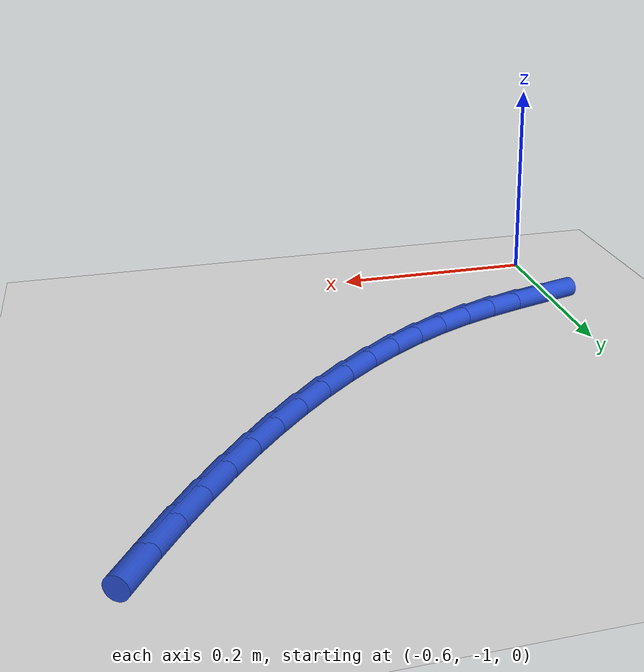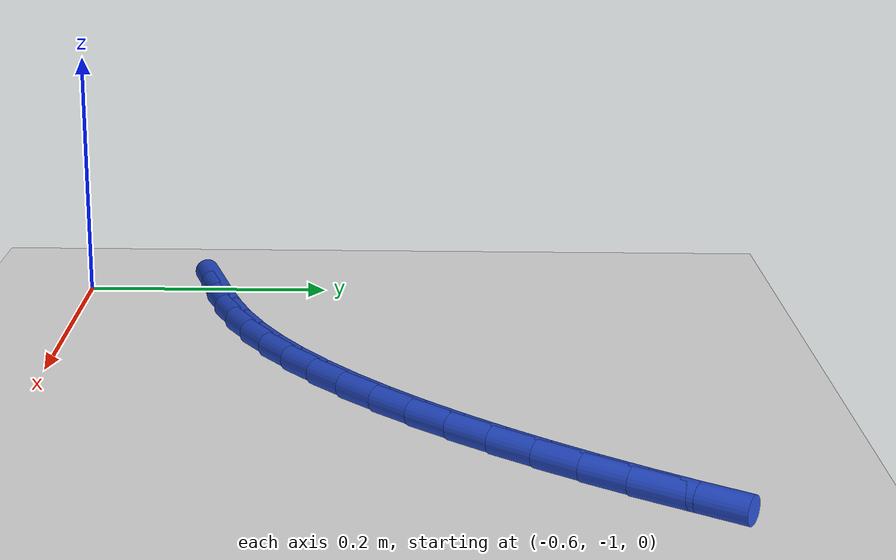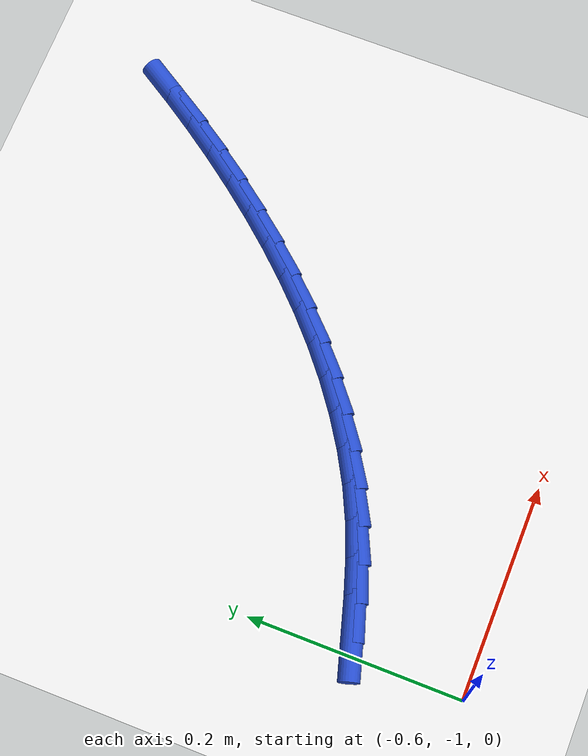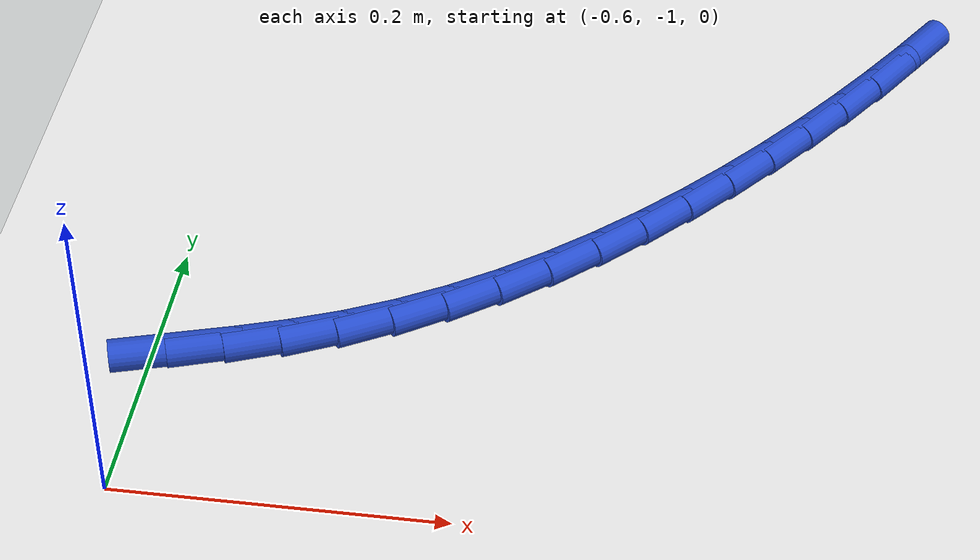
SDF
<sdf version="1.6">
 <world name="default">
  <model name="ground_plane">
   <static>1</static>
   <link name="link">
    <collision name="collision">
     <geometry><plane><normal>0 0 1</normal><size>100 100</size></plane></geometry>
     <surface><friction><ode><mu>100</mu><mu2>50</mu2></ode></friction></surface>
    </collision>
    <visual name="visual">
     <cast_shadows>0</cast_shadows>
     <geometry><plane><normal>0 0 1</normal><size>100 100</size></plane></geometry>
     <material>
      <script><uri>file://media/materials/scripts/gazebo.material</uri><name>Gazebo/WhiteGlow</name></script>
     </material>
    </visual>
   </link>
  </model>
  <model name="line">
   <link name="link_167">
    <pose>-0.5839077399162655 -0.891727954241495 0.01 0 1.57 0.29069868427686185</pose>
    <collision name="collision">
     <geometry><cylinder><radius>0.01</radius><length>0.08</length></cylinder></geometry>
    </collision>
    <visual name="visual">
     <material>
      <script><name>Gazebo/Blue</name><uri>file://media/materials/scripts/gazebo.material</uri></script>
     </material>
     <geometry><cylinder><radius>0.01</radius><length>0.08</length></cylinder></geometry>
    </visual>
   </link>
   <link name="link_168">
    <pose>-0.5515999280515229 -0.8820623018578339 0.01 0 1.57 0.3201507006755943</pose>
    <collision name="collision">
     <geometry><cylinder><radius>0.01</radius><length>0.08</length></cylinder></geometry>
    </collision>
    <visual name="visual">
     <material>
      <script><name>Gazebo/Blue</name><uri>file://media/materials/scripts/gazebo.material</uri></script>
     </material>
     <geometry><cylinder><radius>0.01</radius><length>0.08</length></cylinder></geometry>
    </visual>
   </link>
   <link name="link_169">
    <pose>-0.5198206976265326 -0.8715256862322945 0.01 0 1.57 0.37306474783620186</pose>
    <collision name="collision">
     <geometry><cylinder><radius>0.01</radius><length>0.08</length></cylinder></geometry>
    </collision>
    <visual name="visual">
     <material>
      <script><name>Gazebo/Blue</name><uri>file://media/materials/scripts/gazebo.material</uri></script>
     </material>
     <geometry><cylinder><radius>0.01</radius><length>0.08</length></cylinder></geometry>
    </visual>
   </link>
   <link name="link_170">
    <pose>-0.4887589241379587 -0.85936832021915 0.01 0 1.57 0.4444342897281986</pose>
    <collision name="collision">
     <geometry><cylinder><radius>0.01</radius><length>0.08</length></cylinder></geometry>
    </collision>
    <visual name="visual">
     <material>
      <script><name>Gazebo/Blue</name><uri>file://media/materials/scripts/gazebo.material</uri></script>
     </material>
     <geometry><cylinder><radius>0.01</radius><length>0.08</length></cylinder></geometry>
    </visual>
   </link>
   <link name="link_171">
    <pose>-0.4585721538067907 -0.8449931092426993 0.01 0 1.57 0.5150378210003685</pose>
    <collision name="collision">
     <geometry><cylinder><radius>0.01</radius><length>0.08</length></cylinder></geometry>
    </collision>
    <visual name="visual">
     <material>
      <script><name>Gazebo/Blue</name><uri>file://media/materials/scripts/gazebo.material</uri></script>
     </material>
     <geometry><cylinder><radius>0.01</radius><length>0.08</length></cylinder></geometry>
    </visual>
   </link>
   <link name="link_172">
    <pose>-0.4292912536122465 -0.8284203677984263 0.01 0 1.57 0.5800678407355951</pose>
    <collision name="collision">
     <geometry><cylinder><radius>0.01</radius><length>0.08</length></cylinder></geometry>
    </collision>
    <visual name="visual">
     <material>
      <script><name>Gazebo/Blue</name><uri>file://media/materials/scripts/gazebo.material</uri></script>
     </material>
     <geometry><cylinder><radius>0.01</radius><length>0.08</length></cylinder></geometry>
    </visual>
   </link>
   <link name="link_173">
    <pose>-0.40091507649504826 -0.809826440347707 0.01 0 1.57 0.6396302089191224</pose>
    <collision name="collision">
     <geometry><cylinder><radius>0.01</radius><length>0.08</length></cylinder></geometry>
    </collision>
    <visual name="visual">
     <material>
      <script><name>Gazebo/Blue</name><uri>file://media/materials/scripts/gazebo.material</uri></script>
     </material>
     <geometry><cylinder><radius>0.01</radius><length>0.08</length></cylinder></geometry>
    </visual>
   </link>
   <link name="link_174">
    <pose>-0.37344247539443526 -0.7893876713591389 0.01 0 1.57 0.693970509265359</pose>
    <collision name="collision">
     <geometry><cylinder><radius>0.01</radius><length>0.08</length></cylinder></geometry>
    </collision>
    <visual name="visual">
     <material>
      <script><name>Gazebo/Blue</name><uri>file://media/materials/scripts/gazebo.material</uri></script>
     </material>
     <geometry><cylinder><radius>0.01</radius><length>0.08</length></cylinder></geometry>
    </visual>
   </link>
   <link name="link_175">
    <pose>-0.34687230324964796 -0.7672804053013212 0.01 0 1.57 0.7434187280103977</pose>
    <collision name="collision">
     <geometry><cylinder><radius>0.01</radius><length>0.08</length></cylinder></geometry>
    </collision>
    <visual name="visual">
     <material>
      <script><name>Gazebo/Blue</name><uri>file://media/materials/scripts/gazebo.material</uri></script>
     </material>
     <geometry><cylinder><radius>0.01</radius><length>0.08</length></cylinder></geometry>
    </visual>
   </link>
   <link name="link_176">
    <pose>-0.3212034129999257 -0.7436809866428518 0.01 0 1.57 0.7883462151492245</pose>
    <collision name="collision">
     <geometry><cylinder><radius>0.01</radius><length>0.08</length></cylinder></geometry>
    </collision>
    <visual name="visual">
     <material>
      <script><name>Gazebo/Blue</name><uri>file://media/materials/scripts/gazebo.material</uri></script>
     </material>
     <geometry><cylinder><radius>0.01</radius><length>0.08</length></cylinder></geometry>
    </visual>
   </link>
   <link name="link_177">
    <pose>-0.2964346575845086 -0.7187657598523289 0.01 0 1.57 0.8291348315733368</pose>
    <collision name="collision">
     <geometry><cylinder><radius>0.01</radius><length>0.08</length></cylinder></geometry>
    </collision>
    <visual name="visual">
     <material>
      <script><name>Gazebo/Blue</name><uri>file://media/materials/scripts/gazebo.material</uri></script>
     </material>
     <geometry><cylinder><radius>0.01</radius><length>0.08</length></cylinder></geometry>
    </visual>
   </link>
   <link name="link_178">
    <pose>-0.27256488994263645 -0.6927110693983516 0.01 0 1.57 0.86615640626224</pose>
    <collision name="collision">
     <geometry><cylinder><radius>0.01</radius><length>0.08</length></cylinder></geometry>
    </collision>
    <visual name="visual">
     <material>
      <script><name>Gazebo/Blue</name><uri>file://media/materials/scripts/gazebo.material</uri></script>
     </material>
     <geometry><cylinder><radius>0.01</radius><length>0.08</length></cylinder></geometry>
    </visual>
   </link>
   <link name="link_179">
    <pose>-0.2495929630135489 -0.6656932597495174 0.01 0 1.57 0.8997600871078566</pose>
    <collision name="collision">
     <geometry><cylinder><radius>0.01</radius><length>0.08</length></cylinder></geometry>
    </collision>
    <visual name="visual">
     <material>
      <script><name>Gazebo/Blue</name><uri>file://media/materials/scripts/gazebo.material</uri></script>
     </material>
     <geometry><cylinder><radius>0.01</radius><length>0.08</length></cylinder></geometry>
    </visual>
   </link>
   <link name="link_180">
    <pose>-0.227517729736486 -0.6378886753744253 0.01 0 1.57 0.9302652982802122</pose>
    <collision name="collision">
     <geometry><cylinder><radius>0.01</radius><length>0.08</length></cylinder></geometry>
    </collision>
    <visual name="visual">
     <material>
      <script><name>Gazebo/Blue</name><uri>file://media/materials/scripts/gazebo.material</uri></script>
     </material>
     <geometry><cylinder><radius>0.01</radius><length>0.08</length></cylinder></geometry>
    </visual>
   </link>
   <link name="link_181">
    <pose>-0.20633804305068748 -0.6094736607416736 0.01 0 1.57 0.9579681798057673</pose>
    <collision name="collision">
     <geometry><cylinder><radius>0.01</radius><length>0.08</length></cylinder></geometry>
    </collision>
    <visual name="visual">
     <material>
      <script><name>Gazebo/Blue</name><uri>file://media/materials/scripts/gazebo.material</uri></script>
     </material>
     <geometry><cylinder><radius>0.01</radius><length>0.08</length></cylinder></geometry>
    </visual>
   </link>
   <link name="link_182">
    <pose>-0.18605283399460035 -0.5806240727823925 0.01 0 1.57 0.9843124580587043</pose>
    <collision name="collision">
     <geometry><cylinder><radius>0.01</radius><length>0.08</length></cylinder></geometry>
    </collision>
    <visual name="visual">
     <material>
      <script><name>Gazebo/Blue</name><uri>file://media/materials/scripts/gazebo.material</uri></script>
     </material>
     <geometry><cylinder><radius>0.01</radius><length>0.08</length></cylinder></geometry>
    </visual>
   </link>
   <link name="link_183">
    <pose>-0.16667075683690202 -0.5514550707686695 0.01 0 1.57 1.0117408186053412</pose>
    <collision name="collision">
     <geometry><cylinder><radius>0.01</radius><length>0.08</length></cylinder></geometry>
    </collision>
    <visual name="visual">
     <material>
      <script><name>Gazebo/Blue</name><uri>file://media/materials/scripts/gazebo.material</uri></script>
     </material>
     <geometry><cylinder><radius>0.01</radius><length>0.08</length></cylinder></geometry>
    </visual>
   </link>
  </model>
 </world>
</sdf>
